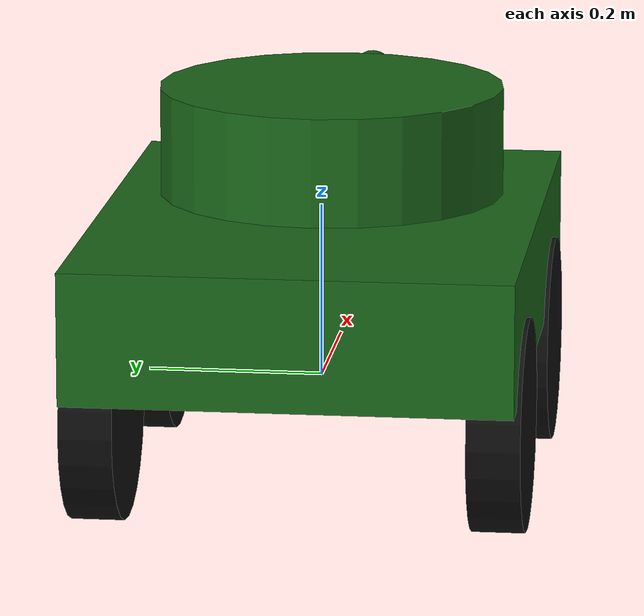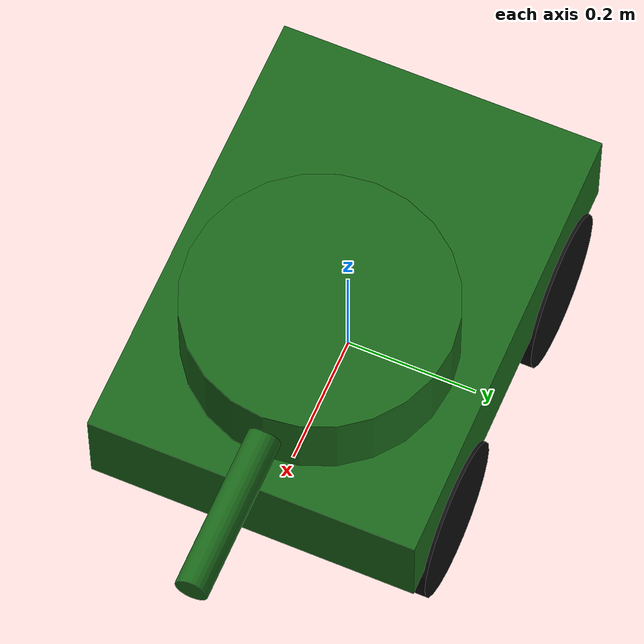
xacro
<?xml version="1.0"?>
<robot xmlns:xacro="http://www.ros.org/wiki/xacro" name="tank_robot">

  <xacro:property name="base_length" value="0.7"/>
  <xacro:property name="base_width" value="0.5"/>
  <xacro:property name="base_height" value="0.15"/>

  <xacro:property name="wheel_radius" value="0.12"/>
  <xacro:property name="wheel_width" value="0.06"/>
  <xacro:property name="wheel_offset_y" value="0.225"/>
  <xacro:property name="wheel_offset_x" value="0.2"/>

  <xacro:property name="tower_radius" value="0.2"/>
  <xacro:property name="tower_height" value="0.25"/>
  <xacro:property name="tower_offset_x" value="0.1"/>

  <xacro:property name="barrel_radius" value="0.025"/>
  <xacro:property name="barrel_length" value="0.6"/>

  <material name="army_green"><color rgba="0.2 0.6 0.2 1"/></material>
  <material name="dark_green"><color rgba="0.1 0.4 0.1 1"/></material>
  <material name="black"><color rgba="0.05 0.05 0.05 1"/></material>

  <link name="base_link">
    <visual>
      <origin xyz="0 0 ${wheel_radius}" rpy="0 0 0"/>
      <geometry><box size="${base_length} ${base_width} ${base_height}"/></geometry>
      <material name="dark_green"/>
    </visual>
    <collision>
      <origin xyz="0 0 ${wheel_radius}" rpy="0 0 0"/>
      <geometry><box size="${base_length} ${base_width} ${base_height}"/></geometry>
    </collision>
    <inertial>
      <mass value="10.0"/>
      <inertia ixx="0.2" ixy="0" ixz="0" iyy="0.3" iyz="0" izz="0.4"/>
    </inertial>
  </link>

  <xacro:macro name="wheel" params="name x y">
    <link name="${name}">
      <visual>
        <origin xyz="0 0 0" rpy="${pi/2} 0 0"/>
        <geometry><cylinder radius="${wheel_radius}" length="${wheel_width}"/></geometry>
        <material name="black"/>
      </visual>
      <collision>
        <origin xyz="0 0 0" rpy="${pi/2} 0 0"/>
        <geometry><cylinder radius="${wheel_radius}" length="${wheel_width}"/></geometry>
      </collision>
      <inertial>
        <mass value="1.0"/>
        <inertia ixx="0.01" ixy="0" ixz="0" iyy="0.01" iyz="0" izz="0.01"/>
      </inertial>
    </link>
    <joint name="${name}_joint" type="continuous">
      <parent link="base_link"/>
      <child link="${name}"/>
      <origin xyz="${x} ${y} 0" rpy="0 0 0"/>
      <axis xyz="0 1 0"/>
    </joint>
  </xacro:macro>

  <xacro:wheel name="front_left_wheel"  x="${wheel_offset_x}"  y="${wheel_offset_y}"/>
  <xacro:wheel name="front_right_wheel" x="${wheel_offset_x}"  y="-${wheel_offset_y}"/>
  <xacro:wheel name="rear_left_wheel"   x="-${wheel_offset_x}" y="${wheel_offset_y}"/>
  <xacro:wheel name="rear_right_wheel"  x="-${wheel_offset_x}" y="-${wheel_offset_y}"/>

  <link name="tower">
    <visual>
      <origin xyz="${tower_offset_x} 0 ${wheel_radius + base_height/2}" rpy="0 0 0"/>
      <geometry><cylinder radius="${tower_radius}" length="${tower_height}"/></geometry>
      <material name="dark_green"/>
    </visual>
    <collision>
      <origin xyz="${tower_offset_x} 0 ${wheel_radius + base_height/2}" rpy="0 0 0"/>
      <geometry><cylinder radius="${tower_radius}" length="${tower_height}"/></geometry>
    </collision>
    <inertial>
      <mass value="2.0"/>
      <inertia ixx="0.05" ixy="0" ixz="0" iyy="0.05" iyz="0" izz="0.05"/>
    </inertial>
  </link>
  <joint name="tower_joint" type="continuous">
    <parent link="base_link"/>
    <child link="tower"/>
    <origin xyz="0 0 0" rpy="0 0 0"/>
    <axis xyz="0 1 0"/>
  </joint>

  <link name="barrel">
    <visual>
      <origin xyz="${tower_height} 0 0.25" rpy="0 ${pi/2} 0"/>
      <geometry><cylinder radius="${barrel_radius}" length="${barrel_length}"/></geometry>
      <material name="dark_green"/>
    </visual>
    <collision>
      <origin xyz="${tower_height} 0 0.25" rpy="0 ${pi/2} 0"/>
      <geometry><cylinder radius="${barrel_radius}" length="${barrel_length}"/></geometry>
    </collision>
    <inertial>
      <mass value="0.5"/>
      <inertia ixx="0.01" ixy="0" ixz="0" iyy="0.01" iyz="0" izz="0.01"/>
    </inertial>
  </link>
  <joint name="barrel_joint" type="fixed">
    <parent link="tower"/>
    <child link="barrel"/>
    <origin xyz="0 0 0" rpy="0 0 0"/>
  </joint>
  <link name="imu_link"/>

  <joint name="imu_joint" type="fixed">
      <parent link="base_link"/>
      <child link="imu_link"/>
      <origin xyz="0.1 0 0.15" rpy="0 0 0"/>
  </joint>
  <!-- Gazebo плагины -->
  <xacro:include filename="robot.gazebo.xacro"/>

</robot>
